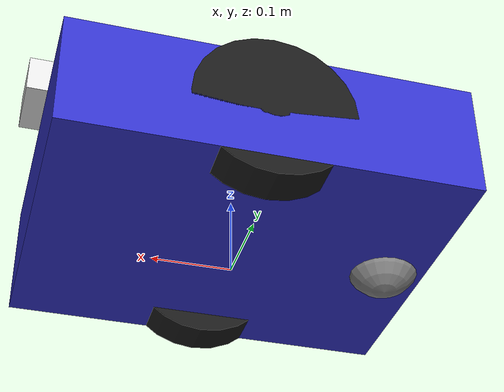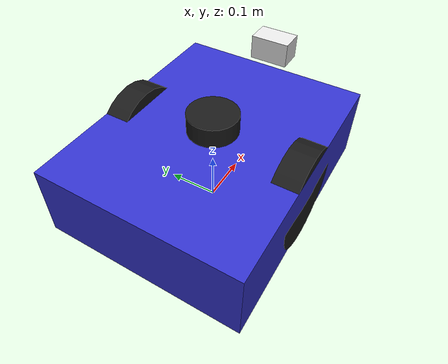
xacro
<?xml version="1.0"?>
<robot name="semantic_nav_robot" xmlns:xacro="http://www.ros.org/wiki/xacro">

  <!-- ============ PROPERTIES ============ -->
  <xacro:property name="base_width"  value="0.4"/>
  <xacro:property name="base_length" value="0.5"/>
  <xacro:property name="base_height" value="0.15"/>
  <xacro:property name="base_mass"   value="10.0"/>

  <xacro:property name="wheel_radius" value="0.1"/>
  <xacro:property name="wheel_width"  value="0.05"/>
  <xacro:property name="wheel_separation" value="0.35"/>
  <xacro:property name="wheel_mass"  value="1.0"/>

  <!-- ============ MATERIALS ============ -->
  <material name="blue">  <color rgba="0.2 0.2 0.8 1.0"/></material>
  <material name="black"> <color rgba="0.1 0.1 0.1 1.0"/></material>
  <material name="white"> <color rgba="0.9 0.9 0.9 1.0"/></material>
  <material name="gray">  <color rgba="0.5 0.5 0.5 1.0"/></material>
  <material name="red">   <color rgba="0.8 0.2 0.2 1.0"/></material>

  <!-- ============ BASE LINK ============ -->
  <link name="base_footprint"/>

  <joint name="base_joint" type="fixed">
    <parent link="base_footprint"/>
    <child  link="base_link"/>
    <origin xyz="0 0 ${wheel_radius}" rpy="0 0 0"/>
  </joint>

  <link name="base_link">
    <visual>
      <geometry><box size="${base_length} ${base_width} ${base_height}"/></geometry>
      <material name="blue"/>
    </visual>
    <collision>
      <geometry><box size="${base_length} ${base_width} ${base_height}"/></geometry>
    </collision>
    <inertial>
      <mass value="${base_mass}"/>
      <inertia ixx="${base_mass*(base_width*base_width+base_height*base_height)/12}"
               iyy="${base_mass*(base_length*base_length+base_height*base_height)/12}"
               izz="${base_mass*(base_length*base_length+base_width*base_width)/12}"
               ixy="0" ixz="0" iyz="0"/>
    </inertial>
  </link>

  <!-- ============ WHEELS ============ -->
  <xacro:macro name="wheel" params="name y_offset">
    <link name="${name}">
      <visual>
        <geometry><cylinder radius="${wheel_radius}" length="${wheel_width}"/></geometry>
        <material name="black"/>
      </visual>
      <collision>
        <geometry><cylinder radius="${wheel_radius}" length="${wheel_width}"/></geometry>
      </collision>
      <inertial>
        <mass value="${wheel_mass}"/>
        <inertia ixx="${wheel_mass*(3*wheel_radius*wheel_radius+wheel_width*wheel_width)/12}"
                 iyy="${wheel_mass*(3*wheel_radius*wheel_radius+wheel_width*wheel_width)/12}"
                 izz="${wheel_mass*wheel_radius*wheel_radius/2}"
                 ixy="0" ixz="0" iyz="0"/>
      </inertial>
    </link>
    <joint name="${name}_joint" type="continuous">
      <parent link="base_link"/>
      <child  link="${name}"/>
      <origin xyz="0 ${y_offset} 0" rpy="-1.5708 0 0"/>
      <axis xyz="0 0 1"/>
    </joint>
  </xacro:macro>

  <xacro:wheel name="left_wheel"  y_offset="${ wheel_separation/2}"/>
  <xacro:wheel name="right_wheel" y_offset="${-wheel_separation/2}"/>

  <!-- Caster wheel -->
  <link name="caster_wheel">
    <visual>
      <geometry><sphere radius="0.05"/></geometry>
      <material name="gray"/>
    </visual>
    <collision>
      <geometry><sphere radius="0.05"/></geometry>
    </collision>
    <inertial>
      <mass value="0.5"/>
      <inertia ixx="0.001" iyy="0.001" izz="0.001" ixy="0" ixz="0" iyz="0"/>
    </inertial>
  </link>
  <joint name="caster_wheel_joint" type="fixed">
    <parent link="base_link"/>
    <child  link="caster_wheel"/>
    <origin xyz="-0.2 0 -0.05" rpy="0 0 0"/>
  </joint>

  <!-- ============ LIDAR ============ -->
  <link name="lidar_link">
    <visual>
      <geometry><cylinder radius="0.05" length="0.04"/></geometry>
      <material name="black"/>
    </visual>
    <collision>
      <geometry><cylinder radius="0.05" length="0.04"/></geometry>
    </collision>
    <inertial>
      <mass value="0.1"/>
      <inertia ixx="0.0001" iyy="0.0001" izz="0.0001" ixy="0" ixz="0" iyz="0"/>
    </inertial>
  </link>
  <joint name="lidar_joint" type="fixed">
    <parent link="base_link"/>
    <child  link="lidar_link"/>
    <origin xyz="0 0 ${base_height/2 + 0.02}" rpy="0 0 0"/>
  </joint>

  <!-- ============ RGB CAMERA ============ -->
  <link name="camera_link">
    <visual>
      <geometry><box size="0.05 0.08 0.05"/></geometry>
      <material name="white"/>
    </visual>
    <collision>
      <geometry><box size="0.05 0.08 0.05"/></geometry>
    </collision>
    <inertial>
      <mass value="0.1"/>
      <inertia ixx="0.0001" iyy="0.0001" izz="0.0001" ixy="0" ixz="0" iyz="0"/>
    </inertial>
  </link>
  <joint name="camera_joint" type="fixed">
    <parent link="base_link"/>
    <child  link="camera_link"/>
    <origin xyz="0.25 0 ${base_height/2 + 0.05}" rpy="0 0 0"/>
  </joint>

  <!-- Camera optical frame (z forward, x right, y down — standard convention) -->
  <link name="camera_rgb_optical_frame"/>
  <joint name="camera_optical_joint" type="fixed">
    <parent link="camera_link"/>
    <child  link="camera_rgb_optical_frame"/>
    <origin xyz="0 0 0" rpy="-1.5708 0 -1.5708"/>
  </joint>

  <!-- Depth camera frame (same position as RGB for this robot) -->
  <link name="camera_depth_frame"/>
  <joint name="camera_depth_joint" type="fixed">
    <parent link="camera_link"/>
    <child  link="camera_depth_frame"/>
    <origin xyz="0 0.02 0" rpy="0 0 0"/>
  </joint>

  <!-- ============ GAZEBO PLUGINS ============ -->

  <!-- Differential drive controller -->
  <gazebo>
    <plugin name="differential_drive_controller" filename="libgazebo_ros_diff_drive.so">
      <ros>
        <remapping>cmd_vel:=cmd_vel</remapping>
        <remapping>odom:=odom</remapping>
      </ros>
      <left_joint>left_wheel_joint</left_joint>
      <right_joint>right_wheel_joint</right_joint>
      <wheel_separation>${wheel_separation}</wheel_separation>
      <wheel_diameter>${2*wheel_radius}</wheel_diameter>
      <max_wheel_torque>20</max_wheel_torque>
      <max_wheel_acceleration>1.0</max_wheel_acceleration>
      <publish_odom>true</publish_odom>
      <publish_odom_tf>true</publish_odom_tf>
      <publish_wheel_tf>false</publish_wheel_tf>
      <odometry_frame>odom</odometry_frame>
      <robot_base_frame>base_footprint</robot_base_frame>
    </plugin>
  </gazebo>

  <!-- 360° LiDAR -->
  <gazebo reference="lidar_link">
    <sensor name="lidar" type="ray">
      <always_on>true</always_on>
      <visualize>true</visualize>
      <update_rate>10</update_rate>
      <ray>
        <scan>
          <horizontal>
            <samples>360</samples>
            <resolution>1</resolution>
            <min_angle>-3.14159</min_angle>
            <max_angle>3.14159</max_angle>
          </horizontal>
        </scan>
        <range>
          <min>0.12</min>
          <max>12.0</max>
          <resolution>0.01</resolution>
        </range>
        <noise>
          <type>gaussian</type>
          <mean>0.0</mean>
          <stddev>0.01</stddev>
        </noise>
      </ray>
      <plugin name="lidar_controller" filename="libgazebo_ros_ray_sensor.so">
        <ros>
          <remapping>~/out:=scan</remapping>
        </ros>
        <output_type>sensor_msgs/LaserScan</output_type>
        <frame_name>lidar_link</frame_name>
      </plugin>
    </sensor>
  </gazebo>

  <!-- RGB Camera -->
  <gazebo reference="camera_link">
    <sensor name="rgb_camera" type="camera">
      <always_on>true</always_on>
      <update_rate>30</update_rate>
      <camera name="rgb">
        <horizontal_fov>1.211</horizontal_fov>  <!-- ~69.4 degrees -->
        <image>
          <width>640</width>
          <height>480</height>
          <format>R8G8B8</format>
        </image>
        <clip><near>0.1</near><far>100</far></clip>
        <noise>
          <type>gaussian</type>
          <mean>0.0</mean>
          <stddev>0.007</stddev>
        </noise>
      </camera>
      <plugin name="camera_controller" filename="libgazebo_ros_camera.so">
        <ros>
          <remapping>image_raw:=camera/image_raw</remapping>
          <remapping>camera_info:=camera/camera_info</remapping>
        </ros>
        <camera_name>rgb_camera</camera_name>
        <frame_name>camera_rgb_optical_frame</frame_name>
        <hack_baseline>0.07</hack_baseline>
      </plugin>
    </sensor>
  </gazebo>

  <!-- Depth Camera (for bbox_to_3d — same physical camera, depth output) -->
  <gazebo reference="camera_depth_frame">
    <sensor name="depth_camera" type="depth">
      <always_on>true</always_on>
      <update_rate>15</update_rate>
      <camera name="depth">
        <horizontal_fov>1.211</horizontal_fov>
        <image>
          <width>640</width>
          <height>480</height>
        </image>
        <clip><near>0.1</near><far>10.0</far></clip>
        <noise>
          <type>gaussian</type>
          <mean>0.0</mean>
          <stddev>0.005</stddev>
        </noise>
      </camera>
      <plugin name="depth_camera_controller" filename="libgazebo_ros_depth_camera.so">
        <ros>
          <remapping>image_raw:=camera/depth/image_raw</remapping>
          <remapping>image_depth:=camera/depth/image_raw</remapping>
          <remapping>camera_info:=camera/depth/camera_info</remapping>
          <remapping>points:=camera/depth/points</remapping>
        </ros>
        <camera_name>depth_camera</camera_name>
        <frame_name>camera_depth_frame</frame_name>
        <min_depth>0.1</min_depth>
        <max_depth>10.0</max_depth>
      </plugin>
    </sensor>
  </gazebo>

  <!-- Gazebo material colors -->
  <gazebo reference="base_link">    <material>Gazebo/Blue</material></gazebo>
  <gazebo reference="left_wheel">   <material>Gazebo/Black</material></gazebo>
  <gazebo reference="right_wheel">  <material>Gazebo/Black</material></gazebo>
  <gazebo reference="caster_wheel"> <material>Gazebo/Grey</material>
    <mu1>0.1</mu1><mu2>0.1</mu2>
  </gazebo>
  <gazebo reference="lidar_link">   <material>Gazebo/Black</material></gazebo>
  <gazebo reference="camera_link">  <material>Gazebo/White</material></gazebo>

</robot>
